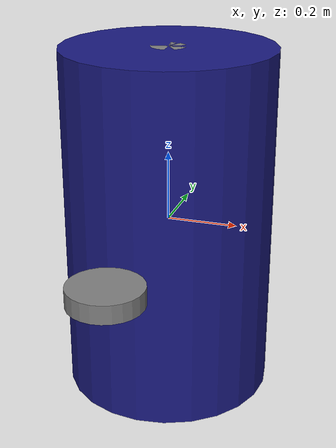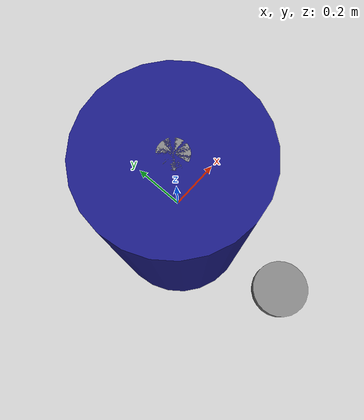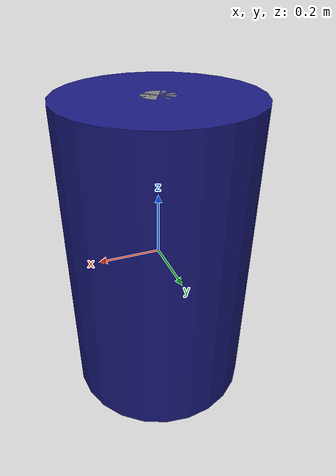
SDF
<?xml version="1.0" ?>
<sdf version="1.10">
    <world name="car_world">
        <physics name="1ms" type="ode">

            <max_step_size>0.001</max_step_size>
            <real_time_factor>1.0</real_time_factor>
        </physics>
        <gravity>0 0 -1.0</gravity>
        <!-- 3D scene -->
<plugin filename="MinimalScene" name="3D View">
  <gz-gui>
    <title>3D View</title>
    <property type="bool" key="showTitleBar">false</property>
    <property type="string" key="state">docked</property>
  </gz-gui>

  <engine>ogre2</engine>
  <scene>scene</scene>
  <ambient_light>0.4 0.4 0.4</ambient_light>
  <background_color>0.8 0.8 0.8</background_color>
  <camera_pose>-6 0 6 0 0.5 0</camera_pose>
  <camera_clip>
    <near>0.25</near>
    <far>25000</far>
  </camera_clip>
</plugin>
<plugin filename="GzSceneManager" name="Scene Manager">
  <gz-gui>
    <property key="resizable" type="bool">false</property>
    <property key="width" type="double">5</property>
    <property key="height" type="double">5</property>
    <property key="state" type="string">floating</property>
    <property key="showTitleBar" type="bool">false</property>
  </gz-gui>
</plugin>
        <plugin filename="libignition-gazebo-altimeter-system.so" name="ignition::gazebo::systems::Altimeter">
        </plugin>
        <!-- Moving Forward-->
        <plugin filename="gz-sim-triggered-publisher-system" name="gz::sim::systems::TriggeredPublisher">
            <input type="gz.msgs.Int32" topic="/keyboard/keypress">
                <match field="data">16777235</match>
            </input>
            <output type="gz.msgs.Twist" topic="/cmd_vel">
	        linear: {x: 0.5}, angular: {z: 0.0}
            </output>
        </plugin>
        <!-- Moving Backward-->
        <plugin filename="gz-sim-triggered-publisher-system" name="gz::sim::systems::TriggeredPublisher">
            <input type="gz.msgs.Int32" topic="/keyboard/keypress">
                <match field="data">16777237</match>
            </input>
            <output type="gz.msgs.Twist" topic="/cmd_vel">
       		 linear: {x: -0.5}, angular: {z: 0.0}
            </output>
        </plugin>
        <!-- Moving Left-->
        <plugin filename="gz-sim-triggered-publisher-system" name="gz::sim::systems::TriggeredPublisher">
            <input type="gz.msgs.Int32" topic="/keyboard/keypress">
                <match field="data">16777234</match>
            </input>
            <output type="gz.msgs.Twist" topic="/cmd_vel">
       	 linear: {x: 0.0}, angular: {z: 0.5}
            </output>
        </plugin>
        <!-- Moving Right-->
        <plugin filename="gz-sim-triggered-publisher-system" name="gz::sim::systems::TriggeredPublisher">
            <input type="gz.msgs.Int32" topic="/keyboard/keypress">
                <match field="data">16777236</match>
            </input>
            <output type="gz.msgs.Twist" topic="/cmd_vel">
        linear: {x: 0.0}, angular: {z: -0.5}
            </output>
        </plugin>
        <plugin filename="gz-sim-imu-system" name="gz::sim::systems::Imu">
        </plugin>
        <plugin filename="gz-sim-physics-system" name="gz::sim::systems::Physics">
        </plugin>
        <plugin filename="gz-sim-user-commands-system" name="gz::sim::systems::UserCommands">
        </plugin>
        <plugin filename="gz-sim-scene-broadcaster-system" name="gz::sim::systems::SceneBroadcaster">
        </plugin>

        <light type="directional" name="sun">
            <cast_shadows>true</cast_shadows>
            <pose>0 0 10 0 0 0</pose>
            <diffuse>0.8 0.8 0.8 1</diffuse>
            <specular>0.2 0.2 0.2 1</specular>
            <attenuation>
                <range>1000</range>
                <constant>0.9</constant>
                <linear>0.01</linear>
                <quadratic>0.001</quadratic>
            </attenuation>
            <direction>-0.5 0.1 -0.9</direction>
        </light>

        <model name="submarine">
            <static>false</static>
            <plugin name="BuoyancyPlugin" filename="libBuoyancyPlugin.so">
                <!-- a viscous liquid -->
                <fluid_density>2000</fluid_density>
                <link name="body">
                    <center_of_volume>1 2 3</center_of_volume>
                    <volume>50</volume>
                </link>
            </plugin>
            <link name="body">
                <inertial>
                    <mass>1.0</mass>
                    <inertia>
                        <ixx>0.1</ixx>
                        <iyy>0.1</iyy>
                        <izz>0.1</izz>
                    </inertia>
                </inertial>
                <visual name="body_visual">
                    <geometry>
                        <cylinder>
                            <radius>0.3</radius>
                            <length>1.0</length>
                        </cylinder>
                    </geometry>
                    <material>
                        <ambient>0.1 0.1 0.3 1</ambient>
                        <diffuse>0.1 0.1 0.5 1</diffuse>
                    </material>
                </visual>
                <collision name="body_collision">
                    <geometry>
                        <cylinder>
                            <radius>0.3</radius>
                            <length>1.0</length>
                        </cylinder>
                    </geometry>
                </collision>
            </link>

            <link name="propeller_rear">
                <visual name="propeller_visual">
                    <geometry>
                        <cylinder>
                            <radius>0.1</radius>
                            <length>0.05</length>
                        </cylinder>
                    </geometry>
                    <material>
                        <ambient>0.2 0.2 0.2 1</ambient>
                        <diffuse>0.5 0.5 0.5 1</diffuse>
                    </material>
                </visual>
                <collision name="propeller_collision">
                    <geometry>
                        <cylinder>
                            <radius>0.1</radius>
                            <length>0.05</length>
                        </cylinder>
                    </geometry>
                </collision>
                <pose>0 -0.5 0 0 0 0</pose>
            </link>

            <link name="periscope">
                <visual name="periscope_visual">
                    <geometry>
                        <cylinder>
                            <radius>0.05</radius>
                            <length>0.2</length>
                        </cylinder>
                    </geometry>
                    <material>
                        <ambient>0.3 0.3 0.3 1</ambient>
                        <diffuse>0.5 0.5 0.5 1</diffuse>
                    </material>
                </visual>
                <pose>0 0 0.4 0 0 0</pose>
            </link>
        </model>
    </world>
</sdf>
